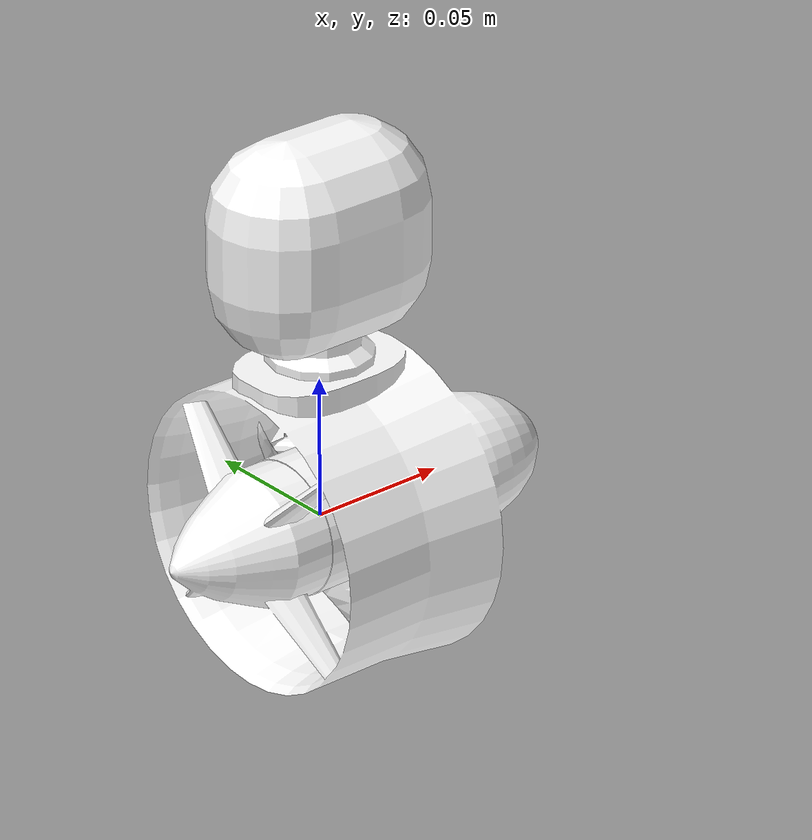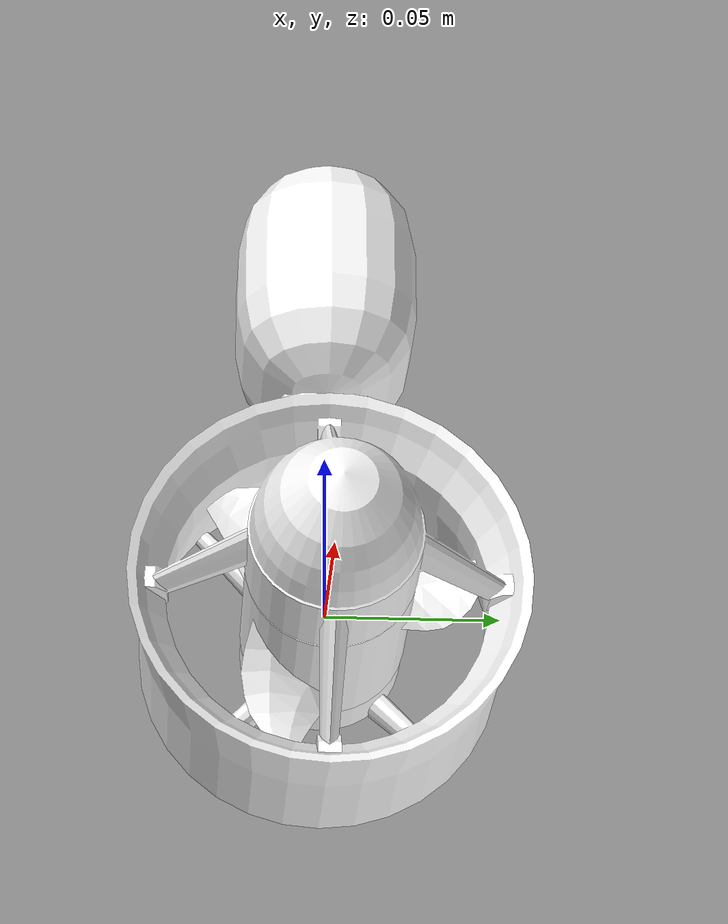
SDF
<?xml version="1.0"?>
<sdf version="1.6">
  <model name="roboboat_thruster">
    <static>true</static>
    <pose>0 0 0 0 0 0</pose>
    <link name="housing_link">
      <inertial>
        <pose>0 0 -0.2 0 0 0</pose>
        <mass>6.715</mass>
        <inertia>
          <ixx>1.3486</ixx>
          <ixy>0</ixy>
          <ixz>0</ixz>
          <iyy>1.3486</iyy>
          <iyz>0</iyz>
          <izz>2.51813</izz>
        </inertia>
      </inertial>

      <!-- Collisions -->
      <collision name="Box011i">
        <pose>0 0 0.100951 0 0 0</pose>
        <geometry>
          <box>
            <size>0.0810453 0.0430519 0.070925</size>
          </box>
        </geometry>
      </collision>

      <collision name="Cylinder264i">
        <pose>0 0 0.0628066 0 0 0</pose>
        <geometry>
          <cylinder>
            <length>0.125613</length>
            <radius>0.014703</radius>
          </cylinder>
        </geometry>
      </collision>

      <collision name="Cylinder263i">
        <pose>0.016653699999999994 0.0001329899999999995 0 1.5708 0.0 -1.5708</pose>
        <geometry>
          <cylinder>
            <length>0.14376</length>
            <radius>0.0243692</radius>
          </cylinder>
        </geometry>
      </collision>

      <!-- Visuals -->
      <visual name="visual_housing">
        <geometry>
           <mesh>
            <uri>file://roboboat_thruster/meshes/housing.dae</uri>
          </mesh>
        </geometry>
        <material>
          <diffuse>1.0 1.0 1.0</diffuse>
          <specular>1.0 1.0 1.0</specular>
          <pbr>
            <metal>
              <albedo_map>file://roboboat_thruster/materials/textures/Thruster_Albedo.png</albedo_map>
              <roughness_map>file://roboboat_thruster/materials/textures/Thruster_Roughness.png</roughness_map>
            </metal>
          </pbr>
        </material>
      </visual>

      <visual name="visual_mount">
        <geometry>
           <mesh>
            <uri>file://roboboat_thruster/meshes/mount.dae</uri>
          </mesh>
        </geometry>
        <material>
          <diffuse>1.0 1.0 1.0</diffuse>
          <specular>1.0 1.0 1.0</specular>
          <pbr>
            <metal>
              <albedo_map>file://roboboat_thruster/materials/textures/Thruster_Albedo.png</albedo_map>
              <roughness_map>file://roboboat_thruster/materials/textures/Thruster_Roughness.png</roughness_map>
            </metal>
          </pbr>
        </material>
      </visual>

    </link>

    <!-- The prop -->
    <link name="propeller_link">
      <visual name="visual_prop">
        <geometry>
           <mesh>
            <uri>file://roboboat_thruster/meshes/prop.dae</uri>
          </mesh>
        </geometry>
        <material>
          <diffuse>1.0 1.0 1.0</diffuse>
          <specular>1.0 1.0 1.0</specular>
          <pbr>
            <metal>
              <albedo_map>file://roboboat_thruster/materials/textures/Thruster_Albedo.png</albedo_map>
              <roughness_map>file://roboboat_thruster/materials/textures/Thruster_Roughness.png</roughness_map>
            </metal>
          </pbr>
        </material>
      </visual>
      <collision name="Cylinder262i">
        <pose>-0.0008728749999999952 0.00013298400000000266 0 1.5708 0.0 -1.5708</pose>
        <geometry>
          <cylinder>
            <length>0.0608172</length>
            <radius>0.0553844</radius>
          </cylinder>
        </geometry>
      </collision>
      <inertial>
        <mass value="0.05"/>
        <inertia ixx="0.0008545" ixy="0.0" ixz="0.0" iyy="0.0008545" iyz="0.0" izz="0.00144"/>
      </inertial>
    </link>

    <!-- Joint housing-propeller -->
    <joint name="left_engine_propeller_joint" type="revolute">
      <axis>
        <xyz>1 0 0</xyz>
        <limit>
          <effort>100</effort>
          <velocity>100</velocity>
        </limit>
        <dynamics>
          <friction>0.05</friction>
          <damping>0.05</damping>
        </dynamics>
      </axis>
      <parent>housing_link</parent>
      <child>propeller_link</child>
    </joint>

  </model>
</sdf>
